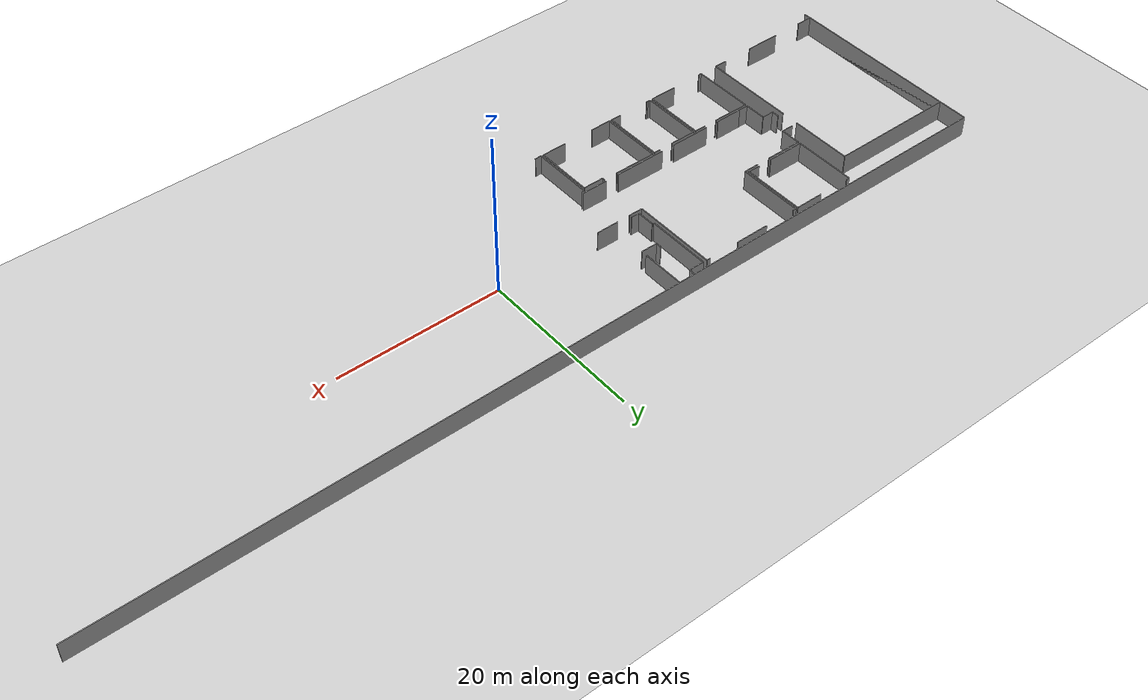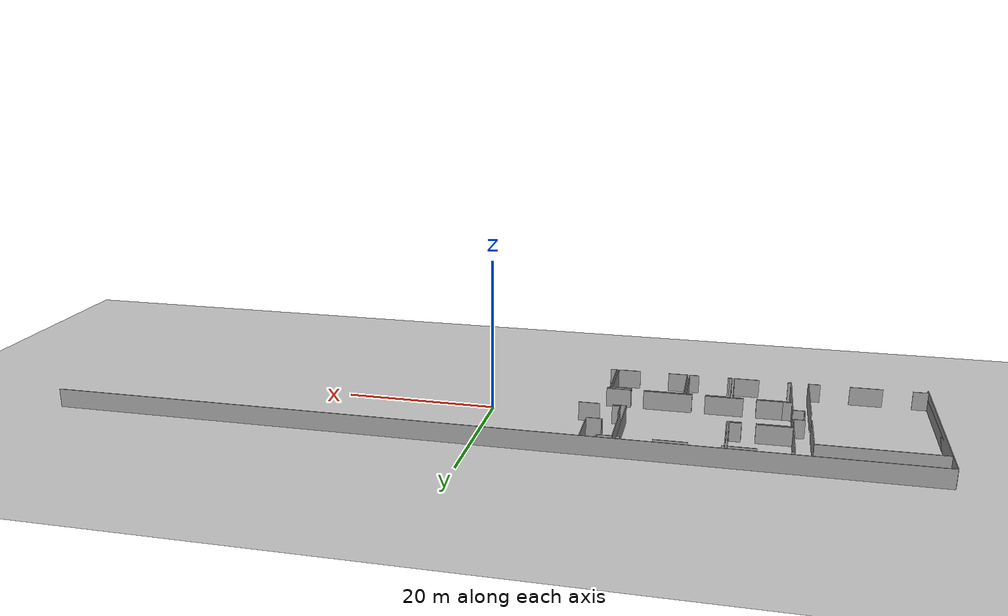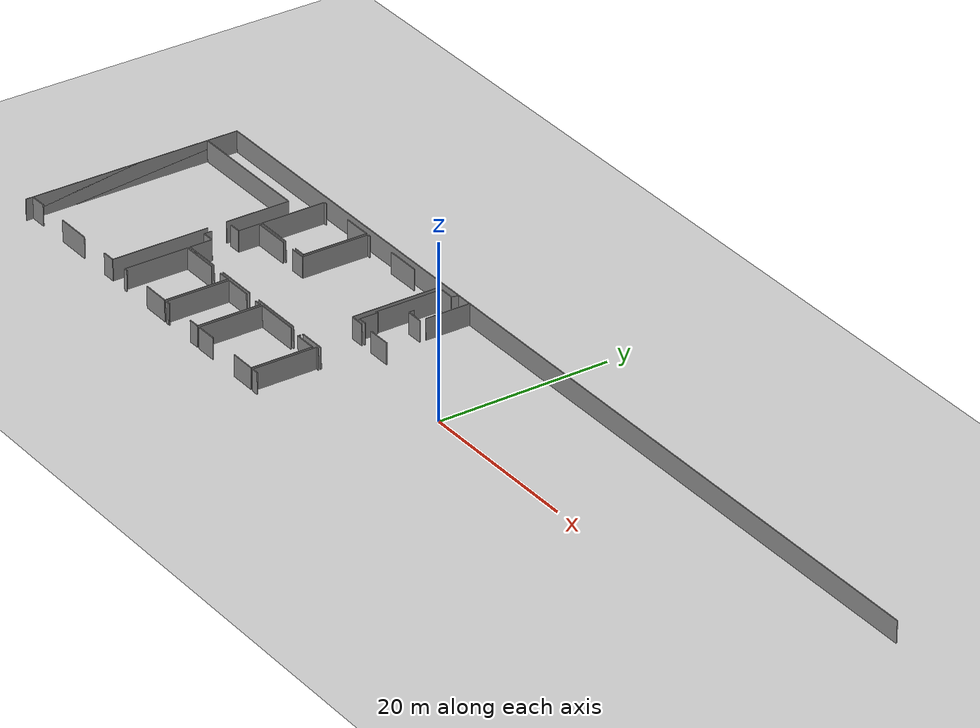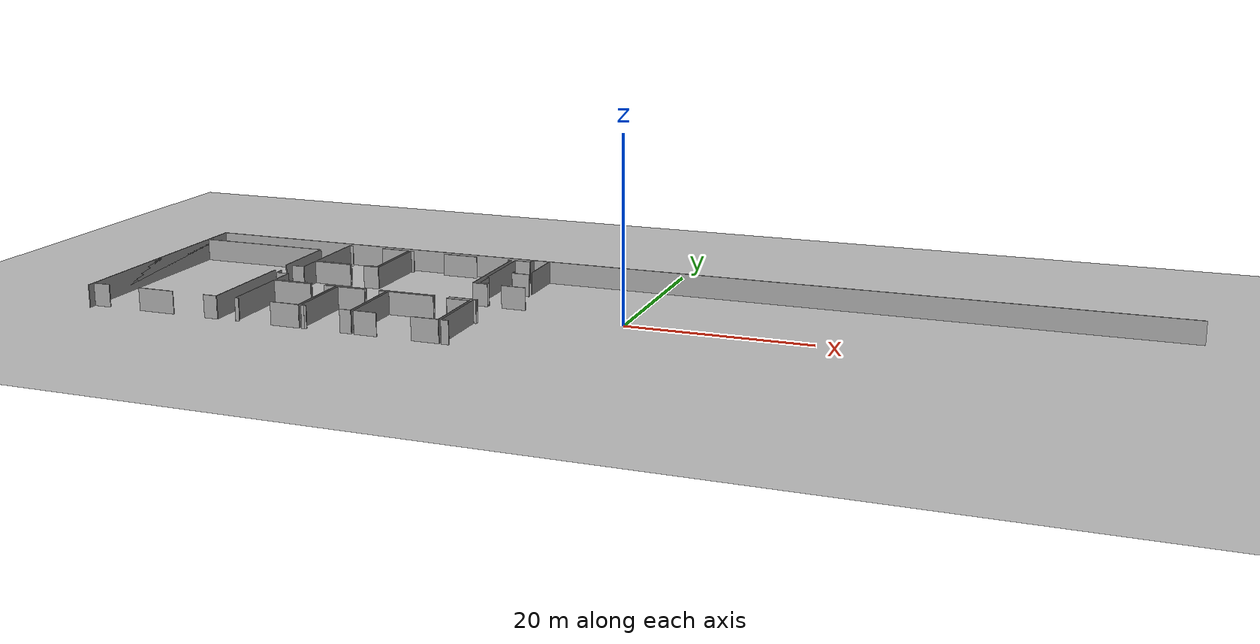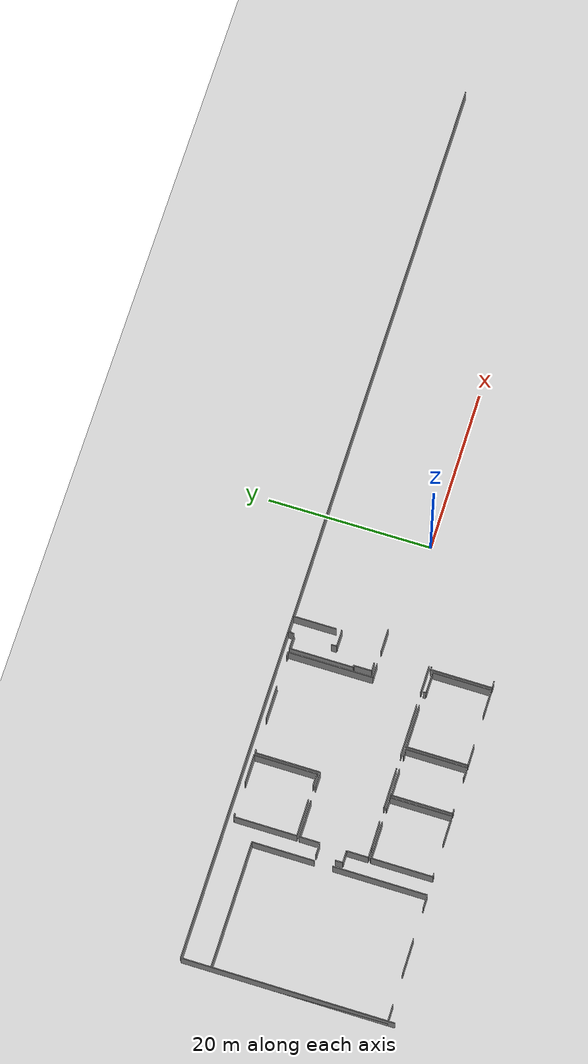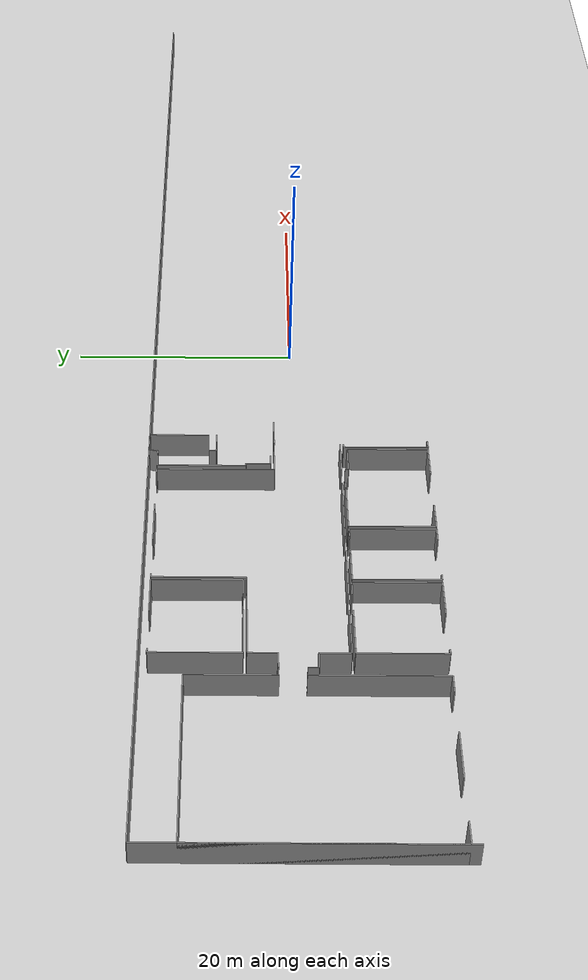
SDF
<sdf version="1.6">
 <world name="default">
  <model name="ground_plane">
   <static>1</static>
   <link name="link">
    <collision name="collision">
     <geometry><plane><normal>0 0 1</normal><size>100 100</size></plane></geometry>
     <surface><friction><ode><mu>100</mu><mu2>50</mu2></ode></friction></surface>
    </collision>
    <visual name="visual">
     <cast_shadows>0</cast_shadows>
     <geometry><plane><normal>0 0 1</normal><size>100 100</size></plane></geometry>
     <material>
      <script><uri>file://media/materials/scripts/gazebo.material</uri><name>Gazebo/Grey</name></script>
     </material>
    </visual>
   </link>
  </model>
  <model name="0510034690_Layout1">
   <static>1</static>
   <link name="Wall_0">
    <collision name="Wall_0_Collision">
     <geometry><box><size>21.0388316156 0.1 2.5</size></box></geometry>
     <pose>10.5194158078 0 1.25 0 0 0</pose>
    </collision>
    <visual name="Wall_0_Visual">
     <pose>10.5194158078 0 1.25 0 0 0</pose>
     <geometry><box><size>21.0388316156 0.1 2.5</size></box></geometry>
     <material>
      <script><uri>file://media/materials/scripts/gazebo.material</uri><name>Gazebo/Grey</name></script>
      <ambient>1 1 1 1</ambient>
     </material>
    </visual>
    <pose>0.0 -24.6704441286 0 0 0 1.57079632679</pose>
   </link>
   <link name="Wall_1">
    <collision name="Wall_1_Collision">
     <geometry><box><size>15.3425897633 0.1 2.5</size></box></geometry>
     <pose>7.67129488166 0 1.25 0 0 0</pose>
    </collision>
    <visual name="Wall_1_Visual">
     <pose>7.67129488166 0 1.25 0 0 0</pose>
     <geometry><box><size>15.3425897633 0.1 2.5</size></box></geometry>
     <material>
      <script><uri>file://media/materials/scripts/gazebo.material</uri><name>Gazebo/Grey</name></script>
      <ambient>1 1 1 1</ambient>
     </material>
    </visual>
    <pose>0.0 -3.63161251304 0 0 0 0.0</pose>
   </link>
   <link name="Wall_2">
    <collision name="Wall_2_Collision">
     <geometry><box><size>7.52580469702 0.1 2.5</size></box></geometry>
     <pose>3.76290234851 0 1.25 0 0 0</pose>
    </collision>
    <visual name="Wall_2_Visual">
     <pose>3.76290234851 0 1.25 0 0 0</pose>
     <geometry><box><size>7.52580469702 0.1 2.5</size></box></geometry>
     <material>
      <script><uri>file://media/materials/scripts/gazebo.material</uri><name>Gazebo/Grey</name></script>
      <ambient>1 1 1 1</ambient>
     </material>
    </visual>
    <pose>15.3425897633 -3.63161251304 0 0 0 -1.57079632679</pose>
   </link>
   <link name="Wall_3">
    <collision name="Wall_3_Collision">
     <geometry><box><size>11.2968849252 0.1 2.5</size></box></geometry>
     <pose>5.64844246259 0 1.25 0 0 0</pose>
    </collision>
    <visual name="Wall_3_Visual">
     <pose>5.64844246259 0 1.25 0 0 0</pose>
     <geometry><box><size>11.2968849252 0.1 2.5</size></box></geometry>
     <material>
      <script><uri>file://media/materials/scripts/gazebo.material</uri><name>Gazebo/Grey</name></script>
      <ambient>1 1 1 1</ambient>
     </material>
    </visual>
    <pose>15.3425897633 -13.3563159223 0 0 0 -1.57079632679</pose>
   </link>
   <link name="Wall_4">
    <collision name="Wall_4_Collision">
     <geometry><box><size>1.58092994537 0.1 2.5</size></box></geometry>
     <pose>0.790464972683 0 1.25 0 0 0</pose>
    </collision>
    <visual name="Wall_4_Visual">
     <pose>0.790464972683 0 1.25 0 0 0</pose>
     <geometry><box><size>1.58092994537 0.1 2.5</size></box></geometry>
     <material>
      <script><uri>file://media/materials/scripts/gazebo.material</uri><name>Gazebo/Grey</name></script>
      <ambient>1 1 1 1</ambient>
     </material>
    </visual>
    <pose>15.3425897633 -24.6532008475 0 0 0 3.14159265359</pose>
   </link>
   <link name="Wall_5">
    <collision name="Wall_5_Collision">
     <geometry><box><size>4.23829707384 0.1 2.5</size></box></geometry>
     <pose>2.11914853692 0 1.25 0 0 0</pose>
    </collision>
    <visual name="Wall_5_Visual">
     <pose>2.11914853692 0 1.25 0 0 0</pose>
     <geometry><box><size>4.23829707384 0.1 2.5</size></box></geometry>
     <material>
      <script><uri>file://media/materials/scripts/gazebo.material</uri><name>Gazebo/Grey</name></script>
      <ambient>1 1 1 1</ambient>
     </material>
    </visual>
    <pose>9.98271868221 -24.6532008475 0 0 0 3.14159265359</pose>
   </link>
   <link name="Wall_6">
    <collision name="Wall_6_Collision">
     <geometry><box><size>1.97899521187 0.1 2.5</size></box></geometry>
     <pose>0.989497605936 0 1.25 0 0 0</pose>
    </collision>
    <visual name="Wall_6_Visual">
     <pose>0.989497605936 0 1.25 0 0 0</pose>
     <geometry><box><size>1.97899521187 0.1 2.5</size></box></geometry>
     <material>
      <script><uri>file://media/materials/scripts/gazebo.material</uri><name>Gazebo/Grey</name></script>
      <ambient>1 1 1 1</ambient>
     </material>
    </visual>
    <pose>1.9789200888 -24.6532008475 0 0 0 -3.13287939384</pose>
   </link>
   <link name="Wall_7">
    <collision name="Wall_7_Collision">
     <geometry><box><size>7.58197214957 0.1 2.5</size></box></geometry>
     <pose>3.79098607478 0 1.25 0 0 0</pose>
    </collision>
    <visual name="Wall_7_Visual">
     <pose>3.79098607478 0 1.25 0 0 0</pose>
     <geometry><box><size>7.58197214957 0.1 2.5</size></box></geometry>
     <material>
      <script><uri>file://media/materials/scripts/gazebo.material</uri><name>Gazebo/Grey</name></script>
      <ambient>1 1 1 1</ambient>
     </material>
    </visual>
    <pose>17.571283851 -8.32913873614 0 0 0 1.57079632679</pose>
   </link>
   <link name="Wall_8">
    <collision name="Wall_8_Collision">
     <geometry><box><size>0.39367932315 0.1 2.5</size></box></geometry>
     <pose>0.196839661575 0 1.25 0 0 0</pose>
    </collision>
    <visual name="Wall_8_Visual">
     <pose>0.196839661575 0 1.25 0 0 0</pose>
     <geometry><box><size>0.39367932315 0.1 2.5</size></box></geometry>
     <material>
      <script><uri>file://media/materials/scripts/gazebo.material</uri><name>Gazebo/Grey</name></script>
      <ambient>1 1 1 1</ambient>
     </material>
    </visual>
    <pose>17.571283851 -0.747166586578 0 0 0 0.0</pose>
   </link>
   <link name="Wall_9">
    <collision name="Wall_9_Collision">
     <geometry><box><size>3.42646818298 0.1 2.5</size></box></geometry>
     <pose>1.71323409149 0 1.25 0 0 0</pose>
    </collision>
    <visual name="Wall_9_Visual">
     <pose>1.71323409149 0 1.25 0 0 0</pose>
     <geometry><box><size>3.42646818298 0.1 2.5</size></box></geometry>
     <material>
      <script><uri>file://media/materials/scripts/gazebo.material</uri><name>Gazebo/Grey</name></script>
      <ambient>1 1 1 1</ambient>
     </material>
    </visual>
    <pose>21.843433543 -0.747166586578 0 0 0 0.0</pose>
   </link>
   <link name="Wall_10">
    <collision name="Wall_10_Collision">
     <geometry><box><size>7.57677380746 0.1 2.5</size></box></geometry>
     <pose>3.78838690373 0 1.25 0 0 0</pose>
    </collision>
    <visual name="Wall_10_Visual">
     <pose>3.78838690373 0 1.25 0 0 0</pose>
     <geometry><box><size>7.57677380746 0.1 2.5</size></box></geometry>
     <material>
      <script><uri>file://media/materials/scripts/gazebo.material</uri><name>Gazebo/Grey</name></script>
      <ambient>1 1 1 1</ambient>
     </material>
    </visual>
    <pose>25.269901726 -0.747166586578 0 0 0 -1.57079632679</pose>
   </link>
   <link name="Wall_11">
    <collision name="Wall_11_Collision">
     <geometry><box><size>1.49243134068 0.1 2.5</size></box></geometry>
     <pose>0.746215670339 0 1.25 0 0 0</pose>
    </collision>
    <visual name="Wall_11_Visual">
     <pose>0.746215670339 0 1.25 0 0 0</pose>
     <geometry><box><size>1.49243134068 0.1 2.5</size></box></geometry>
     <material>
      <script><uri>file://media/materials/scripts/gazebo.material</uri><name>Gazebo/Grey</name></script>
      <ambient>1 1 1 1</ambient>
     </material>
    </visual>
    <pose>25.269901726 -8.32394039403 0 0 0 3.14159265359</pose>
   </link>
   <link name="Wall_12">
    <collision name="Wall_12_Collision">
     <geometry><box><size>4.47526841985 0.1 2.5</size></box></geometry>
     <pose>2.23763420992 0 1.25 0 0 0</pose>
    </collision>
    <visual name="Wall_12_Visual">
     <pose>2.23763420992 0 1.25 0 0 0</pose>
     <geometry><box><size>4.47526841985 0.1 2.5</size></box></geometry>
     <material>
      <script><uri>file://media/materials/scripts/gazebo.material</uri><name>Gazebo/Grey</name></script>
      <ambient>1 1 1 1</ambient>
     </material>
    </visual>
    <pose>22.0465492518 -8.32394039403 0 0 0 -3.14043108231</pose>
   </link>
   <link name="Wall_13">
    <collision name="Wall_13_Collision">
     <geometry><box><size>7.46164954806 0.1 2.5</size></box></geometry>
     <pose>3.73082477403 0 1.25 0 0 0</pose>
    </collision>
    <visual name="Wall_13_Visual">
     <pose>3.73082477403 0 1.25 0 0 0</pose>
     <geometry><box><size>7.46164954806 0.1 2.5</size></box></geometry>
     <material>
      <script><uri>file://media/materials/scripts/gazebo.material</uri><name>Gazebo/Grey</name></script>
      <ambient>1 1 1 1</ambient>
     </material>
    </visual>
    <pose>17.5726785282 -24.6704441286 0 0 0 1.57079632679</pose>
   </link>
   <link name="Wall_14">
    <collision name="Wall_14_Collision">
     <geometry><box><size>4.50696260871 0.1 2.5</size></box></geometry>
     <pose>2.25348130435 0 1.25 0 0 0</pose>
    </collision>
    <visual name="Wall_14_Visual">
     <pose>2.25348130435 0 1.25 0 0 0</pose>
     <geometry><box><size>4.50696260871 0.1 2.5</size></box></geometry>
     <material>
      <script><uri>file://media/materials/scripts/gazebo.material</uri><name>Gazebo/Grey</name></script>
      <ambient>1 1 1 1</ambient>
     </material>
    </visual>
    <pose>17.5726785282 -17.2087945805 0 0 0 0.0</pose>
   </link>
   <link name="Wall_15">
    <collision name="Wall_15_Collision">
     <geometry><box><size>1.36716397473 0.1 2.5</size></box></geometry>
     <pose>0.683581987364 0 1.25 0 0 0</pose>
    </collision>
    <visual name="Wall_15_Visual">
     <pose>0.683581987364 0 1.25 0 0 0</pose>
     <geometry><box><size>1.36716397473 0.1 2.5</size></box></geometry>
     <material>
      <script><uri>file://media/materials/scripts/gazebo.material</uri><name>Gazebo/Grey</name></script>
      <ambient>1 1 1 1</ambient>
     </material>
    </visual>
    <pose>23.7239654982 -17.2087945805 0 0 0 0.0</pose>
   </link>
   <link name="Wall_16">
    <collision name="Wall_16_Collision">
     <geometry><box><size>7.43223453905 0.1 2.5</size></box></geometry>
     <pose>3.71611726953 0 1.25 0 0 0</pose>
    </collision>
    <visual name="Wall_16_Visual">
     <pose>3.71611726953 0 1.25 0 0 0</pose>
     <geometry><box><size>7.43223453905 0.1 2.5</size></box></geometry>
     <material>
      <script><uri>file://media/materials/scripts/gazebo.material</uri><name>Gazebo/Grey</name></script>
      <ambient>1 1 1 1</ambient>
     </material>
    </visual>
    <pose>25.091129473 -17.2087945805 0 0 0 -1.57079632679</pose>
   </link>
   <link name="Wall_17">
    <collision name="Wall_17_Collision">
     <geometry><box><size>3.31793694284 0.1 2.5</size></box></geometry>
     <pose>1.65896847142 0 1.25 0 0 0</pose>
    </collision>
    <visual name="Wall_17_Visual">
     <pose>1.65896847142 0 1.25 0 0 0</pose>
     <geometry><box><size>3.31793694284 0.1 2.5</size></box></geometry>
     <material>
      <script><uri>file://media/materials/scripts/gazebo.material</uri><name>Gazebo/Grey</name></script>
      <ambient>1 1 1 1</ambient>
     </material>
    </visual>
    <pose>25.091129473 -24.6410291196 0 0 0 3.14159265359</pose>
   </link>
   <link name="Wall_18">
    <collision name="Wall_18_Collision">
     <geometry><box><size>0.433349389511 0.1 2.5</size></box></geometry>
     <pose>0.216674694756 0 1.25 0 0 0</pose>
    </collision>
    <visual name="Wall_18_Visual">
     <pose>0.216674694756 0 1.25 0 0 0</pose>
     <geometry><box><size>0.433349389511 0.1 2.5</size></box></geometry>
     <material>
      <script><uri>file://media/materials/scripts/gazebo.material</uri><name>Gazebo/Grey</name></script>
      <ambient>1 1 1 1</ambient>
     </material>
    </visual>
    <pose>18.0050284451 -24.6410291196 0 0 0 -3.07366214587</pose>
   </link>
   <link name="Wall_19">
    <collision name="Wall_19_Collision">
     <geometry><box><size>0.34511920052 0.1 2.5</size></box></geometry>
     <pose>0.17255960026 0 1.25 0 0 0</pose>
    </collision>
    <visual name="Wall_19_Visual">
     <pose>0.17255960026 0 1.25 0 0 0</pose>
     <geometry><box><size>0.34511920052 0.1 2.5</size></box></geometry>
     <material>
      <script><uri>file://media/materials/scripts/gazebo.material</uri><name>Gazebo/Grey</name></script>
      <ambient>1 1 1 1</ambient>
     </material>
    </visual>
    <pose>25.7380060935 -24.6487632383 0 0 0 3.14159265359</pose>
   </link>
   <link name="Wall_20">
    <collision name="Wall_20_Collision">
     <geometry><box><size>7.39166211283 0.1 2.5</size></box></geometry>
     <pose>3.69583105642 0 1.25 0 0 0</pose>
    </collision>
    <visual name="Wall_20_Visual">
     <pose>3.69583105642 0 1.25 0 0 0</pose>
     <geometry><box><size>7.39166211283 0.1 2.5</size></box></geometry>
     <material>
      <script><uri>file://media/materials/scripts/gazebo.material</uri><name>Gazebo/Grey</name></script>
      <ambient>1 1 1 1</ambient>
     </material>
    </visual>
    <pose>25.392886893 -24.6487632383 0 0 0 1.57079632679</pose>
   </link>
   <link name="Wall_21">
    <collision name="Wall_21_Collision">
     <geometry><box><size>3.22132385291 0.1 2.5</size></box></geometry>
     <pose>1.61066192645 0 1.25 0 0 0</pose>
    </collision>
    <visual name="Wall_21_Visual">
     <pose>1.61066192645 0 1.25 0 0 0</pose>
     <geometry><box><size>3.22132385291 0.1 2.5</size></box></geometry>
     <material>
      <script><uri>file://media/materials/scripts/gazebo.material</uri><name>Gazebo/Grey</name></script>
      <ambient>1 1 1 1</ambient>
     </material>
    </visual>
    <pose>25.392886893 -17.2571011255 0 0 0 0.0</pose>
   </link>
   <link name="Wall_22">
    <collision name="Wall_22_Collision">
     <geometry><box><size>0.834143725284 0.1 2.5</size></box></geometry>
     <pose>0.417071862642 0 1.25 0 0 0</pose>
    </collision>
    <visual name="Wall_22_Visual">
     <pose>0.417071862642 0 1.25 0 0 0</pose>
     <geometry><box><size>0.834143725284 0.1 2.5</size></box></geometry>
     <material>
      <script><uri>file://media/materials/scripts/gazebo.material</uri><name>Gazebo/Grey</name></script>
      <ambient>1 1 1 1</ambient>
     </material>
    </visual>
    <pose>30.29188057 -17.2571011255 0 0 0 0.0</pose>
   </link>
   <link name="Wall_23">
    <collision name="Wall_23_Collision">
     <geometry><box><size>7.38392799409 0.1 2.5</size></box></geometry>
     <pose>3.69196399704 0 1.25 0 0 0</pose>
    </collision>
    <visual name="Wall_23_Visual">
     <pose>3.69196399704 0 1.25 0 0 0</pose>
     <geometry><box><size>7.38392799409 0.1 2.5</size></box></geometry>
     <material>
      <script><uri>file://media/materials/scripts/gazebo.material</uri><name>Gazebo/Grey</name></script>
      <ambient>1 1 1 1</ambient>
     </material>
    </visual>
    <pose>31.1260242953 -17.2571011255 0 0 0 -1.57079632679</pose>
   </link>
   <link name="Wall_24">
    <collision name="Wall_24_Collision">
     <geometry><box><size>1.29578186235 0.1 2.5</size></box></geometry>
     <pose>0.647890931175 0 1.25 0 0 0</pose>
    </collision>
    <visual name="Wall_24_Visual">
     <pose>0.647890931175 0 1.25 0 0 0</pose>
     <geometry><box><size>1.29578186235 0.1 2.5</size></box></geometry>
     <material>
      <script><uri>file://media/materials/scripts/gazebo.material</uri><name>Gazebo/Grey</name></script>
      <ambient>1 1 1 1</ambient>
     </material>
    </visual>
    <pose>31.1260242953 -24.6410291196 0 0 0 3.14159265359</pose>
   </link>
   <link name="Wall_25">
    <collision name="Wall_25_Collision">
     <geometry><box><size>0.222648770081 0.1 2.5</size></box></geometry>
     <pose>0.111324385041 0 1.25 0 0 0</pose>
    </collision>
    <visual name="Wall_25_Visual">
     <pose>0.111324385041 0 1.25 0 0 0</pose>
     <geometry><box><size>0.222648770081 0.1 2.5</size></box></geometry>
     <material>
      <script><uri>file://media/materials/scripts/gazebo.material</uri><name>Gazebo/Grey</name></script>
      <ambient>1 1 1 1</ambient>
     </material>
    </visual>
    <pose>25.9605204935 -24.6410291196 0 0 0 -3.10684880576</pose>
   </link>
   <link name="Wall_26">
    <collision name="Wall_26_Collision">
     <geometry><box><size>7.4463080994 0.1 2.5</size></box></geometry>
     <pose>3.7231540497 0 1.25 0 0 0</pose>
    </collision>
    <visual name="Wall_26_Visual">
     <pose>3.7231540497 0 1.25 0 0 0</pose>
     <geometry><box><size>7.4463080994 0.1 2.5</size></box></geometry>
     <material>
      <script><uri>file://media/materials/scripts/gazebo.material</uri><name>Gazebo/Grey</name></script>
      <ambient>1 1 1 1</ambient>
     </material>
    </visual>
    <pose>31.4268941935 -24.6553562576 0 0 0 1.57079632679</pose>
   </link>
   <link name="Wall_27">
    <collision name="Wall_27_Collision">
     <geometry><box><size>5.20316008485 0.1 2.5</size></box></geometry>
     <pose>2.60158004242 0 1.25 0 0 0</pose>
    </collision>
    <visual name="Wall_27_Visual">
     <pose>2.60158004242 0 1.25 0 0 0</pose>
     <geometry><box><size>5.20316008485 0.1 2.5</size></box></geometry>
     <material>
      <script><uri>file://media/materials/scripts/gazebo.material</uri><name>Gazebo/Grey</name></script>
      <ambient>1 1 1 1</ambient>
     </material>
    </visual>
    <pose>31.4268941935 -17.2090481582 0 0 0 0.0</pose>
   </link>
   <link name="Wall_28">
    <collision name="Wall_28_Collision">
     <geometry><box><size>0.305941451453 0.1 2.5</size></box></geometry>
     <pose>0.152970725727 0 1.25 0 0 0</pose>
    </collision>
    <visual name="Wall_28_Visual">
     <pose>0.152970725727 0 1.25 0 0 0</pose>
     <geometry><box><size>0.305941451453 0.1 2.5</size></box></geometry>
     <material>
      <script><uri>file://media/materials/scripts/gazebo.material</uri><name>Gazebo/Grey</name></script>
      <ambient>1 1 1 1</ambient>
     </material>
    </visual>
    <pose>38.3278835267 -17.2090481582 0 0 0 -1.57079632679</pose>
   </link>
   <link name="Wall_29">
    <collision name="Wall_29_Collision">
     <geometry><box><size>2.54845552184 0.1 2.5</size></box></geometry>
     <pose>1.27422776092 0 1.25 0 0 0</pose>
    </collision>
    <visual name="Wall_29_Visual">
     <pose>1.27422776092 0 1.25 0 0 0</pose>
     <geometry><box><size>2.54845552184 0.1 2.5</size></box></geometry>
     <material>
      <script><uri>file://media/materials/scripts/gazebo.material</uri><name>Gazebo/Grey</name></script>
      <ambient>1 1 1 1</ambient>
     </material>
    </visual>
    <pose>38.3278835267 -17.5149896097 0 0 0 0.0</pose>
   </link>
   <link name="Wall_30">
    <collision name="Wall_30_Collision">
     <geometry><box><size>7.12375731096 0.1 2.5</size></box></geometry>
     <pose>3.56187865548 0 1.25 0 0 0</pose>
    </collision>
    <visual name="Wall_30_Visual">
     <pose>3.56187865548 0 1.25 0 0 0</pose>
     <geometry><box><size>7.12375731096 0.1 2.5</size></box></geometry>
     <material>
      <script><uri>file://media/materials/scripts/gazebo.material</uri><name>Gazebo/Grey</name></script>
      <ambient>1 1 1 1</ambient>
     </material>
    </visual>
    <pose>40.8763390486 -17.5149896097 0 0 0 -1.57079632679</pose>
   </link>
   <link name="Wall_31">
    <collision name="Wall_31_Collision">
     <geometry><box><size>3.03570500296 0.1 2.5</size></box></geometry>
     <pose>1.51785250148 0 1.25 0 0 0</pose>
    </collision>
    <visual name="Wall_31_Visual">
     <pose>1.51785250148 0 1.25 0 0 0</pose>
     <geometry><box><size>3.03570500296 0.1 2.5</size></box></geometry>
     <material>
      <script><uri>file://media/materials/scripts/gazebo.material</uri><name>Gazebo/Grey</name></script>
      <ambient>1 1 1 1</ambient>
     </material>
    </visual>
    <pose>40.8763390486 -24.6387469206 0 0 0 3.14159265359</pose>
   </link>
   <link name="Wall_32">
    <collision name="Wall_32_Collision">
     <geometry><box><size>2.5426774841 0.1 2.5</size></box></geometry>
     <pose>1.27133874205 0 1.25 0 0 0</pose>
    </collision>
    <visual name="Wall_32_Visual">
     <pose>1.27133874205 0 1.25 0 0 0</pose>
     <geometry><box><size>2.5426774841 0.1 2.5</size></box></geometry>
     <material>
      <script><uri>file://media/materials/scripts/gazebo.material</uri><name>Gazebo/Grey</name></script>
      <ambient>1 1 1 1</ambient>
     </material>
    </visual>
    <pose>33.969517429 -24.6387469206 0 0 0 -3.13506038388</pose>
   </link>
   <link name="Wall_33">
    <collision name="Wall_33_Collision">
     <geometry><box><size>7.46836935615 0.1 2.5</size></box></geometry>
     <pose>3.73418467808 0 1.25 0 0 0</pose>
    </collision>
    <visual name="Wall_33_Visual">
     <pose>3.73418467808 0 1.25 0 0 0</pose>
     <geometry><box><size>7.46836935615 0.1 2.5</size></box></geometry>
     <material>
      <script><uri>file://media/materials/scripts/gazebo.material</uri><name>Gazebo/Grey</name></script>
      <ambient>1 1 1 1</ambient>
     </material>
    </visual>
    <pose>41.1636425417 -24.667908352 0 0 0 1.57079632679</pose>
   </link>
   <link name="Wall_34">
    <collision name="Wall_34_Collision">
     <geometry><box><size>0.325974086899 0.1 2.5</size></box></geometry>
     <pose>0.162987043449 0 1.25 0 0 0</pose>
    </collision>
    <visual name="Wall_34_Visual">
     <pose>0.162987043449 0 1.25 0 0 0</pose>
     <geometry><box><size>0.325974086899 0.1 2.5</size></box></geometry>
     <material>
      <script><uri>file://media/materials/scripts/gazebo.material</uri><name>Gazebo/Grey</name></script>
      <ambient>1 1 1 1</ambient>
     </material>
    </visual>
    <pose>41.1636425417 -17.1995389958 0 0 0 0.0</pose>
   </link>
   <link name="Wall_38">
    <collision name="Wall_38_Collision">
     <geometry><box><size>0.816420343476 0.1 2.5</size></box></geometry>
     <pose>0.408210171738 0 1.25 0 0 0</pose>
    </collision>
    <visual name="Wall_38_Visual">
     <pose>0.408210171738 0 1.25 0 0 0</pose>
     <geometry><box><size>0.816420343476 0.1 2.5</size></box></geometry>
     <material>
      <script><uri>file://media/materials/scripts/gazebo.material</uri><name>Gazebo/Grey</name></script>
      <ambient>1 1 1 1</ambient>
     </material>
    </visual>
    <pose>41.9799090417 -24.652059748 0 0 0 -3.12217912516</pose>
   </link>
   <link name="Wall_47">
    <collision name="Wall_47_Collision">
     <geometry><box><size>2.171892691 0.1 2.5</size></box></geometry>
     <pose>1.0859463455 0 1.25 0 0 0</pose>
    </collision>
    <visual name="Wall_47_Visual">
     <pose>1.0859463455 0 1.25 0 0 0</pose>
     <geometry><box><size>2.171892691 0.1 2.5</size></box></geometry>
     <material>
      <script><uri>file://media/materials/scripts/gazebo.material</uri><name>Gazebo/Grey</name></script>
      <ambient>1 1 1 1</ambient>
     </material>
    </visual>
    <pose>38.9810995888 -10.7163188638 0 0 0 1.57079632679</pose>
   </link>
   <link name="Wall_48">
    <collision name="Wall_48_Collision">
     <geometry><box><size>0.231516407109 0.1 2.5</size></box></geometry>
     <pose>0.115758203554 0 1.25 0 0 0</pose>
    </collision>
    <visual name="Wall_48_Visual">
     <pose>0.115758203554 0 1.25 0 0 0</pose>
     <geometry><box><size>0.231516407109 0.1 2.5</size></box></geometry>
     <material>
      <script><uri>file://media/materials/scripts/gazebo.material</uri><name>Gazebo/Grey</name></script>
      <ambient>1 1 1 1</ambient>
     </material>
    </visual>
    <pose>38.9810995888 -8.54442617276 0 0 0 3.14159265359</pose>
   </link>
   <link name="Wall_49">
    <collision name="Wall_49_Collision">
     <geometry><box><size>7.77278934162 0.1 2.5</size></box></geometry>
     <pose>3.88639467081 0 1.25 0 0 0</pose>
    </collision>
    <visual name="Wall_49_Visual">
     <pose>3.88639467081 0 1.25 0 0 0</pose>
     <geometry><box><size>7.77278934162 0.1 2.5</size></box></geometry>
     <material>
      <script><uri>file://media/materials/scripts/gazebo.material</uri><name>Gazebo/Grey</name></script>
      <ambient>1 1 1 1</ambient>
     </material>
    </visual>
    <pose>38.7495831817 -8.54442617276 0 0 0 1.57079632679</pose>
   </link>
   <link name="Wall_50">
    <collision name="Wall_50_Collision">
     <geometry><box><size>1.80813553219 0.1 2.5</size></box></geometry>
     <pose>0.904067766095 0 1.25 0 0 0</pose>
    </collision>
    <visual name="Wall_50_Visual">
     <pose>0.904067766095 0 1.25 0 0 0</pose>
     <geometry><box><size>1.80813553219 0.1 2.5</size></box></geometry>
     <material>
      <script><uri>file://media/materials/scripts/gazebo.material</uri><name>Gazebo/Grey</name></script>
      <ambient>1 1 1 1</ambient>
     </material>
    </visual>
    <pose>38.7495831817 -0.771636831141 0 0 0 0.0</pose>
   </link>
   <link name="Wall_51">
    <collision name="Wall_51_Collision">
     <geometry><box><size>0.789150353214 0.1 2.5</size></box></geometry>
     <pose>0.394575176607 0 1.25 0 0 0</pose>
    </collision>
    <visual name="Wall_51_Visual">
     <pose>0.394575176607 0 1.25 0 0 0</pose>
     <geometry><box><size>0.789150353214 0.1 2.5</size></box></geometry>
     <material>
      <script><uri>file://media/materials/scripts/gazebo.material</uri><name>Gazebo/Grey</name></script>
      <ambient>1 1 1 1</ambient>
     </material>
    </visual>
    <pose>40.5577187139 -0.771636831141 0 0 0 1.35972543623</pose>
   </link>
   <link name="Wall_52">
    <collision name="Wall_52_Collision">
     <geometry><box><size>1.89993525354 0.1 2.5</size></box></geometry>
     <pose>0.949967626772 0 1.25 0 0 0</pose>
    </collision>
    <visual name="Wall_52_Visual">
     <pose>0.949967626772 0 1.25 0 0 0</pose>
     <geometry><box><size>1.89993525354 0.1 2.5</size></box></geometry>
     <material>
      <script><uri>file://media/materials/scripts/gazebo.material</uri><name>Gazebo/Grey</name></script>
      <ambient>1 1 1 1</ambient>
     </material>
    </visual>
    <pose>40.7230513507 -0.0 0 0 0 -0.00220219864221</pose>
   </link>
   <link name="Wall_53">
    <collision name="Wall_53_Collision">
     <geometry><box><size>5.2768243962 0.1 2.5</size></box></geometry>
     <pose>2.6384121981 0 1.25 0 0 0</pose>
    </collision>
    <visual name="Wall_53_Visual">
     <pose>2.6384121981 0 1.25 0 0 0</pose>
     <geometry><box><size>5.2768243962 0.1 2.5</size></box></geometry>
     <material>
      <script><uri>file://media/materials/scripts/gazebo.material</uri><name>Gazebo/Grey</name></script>
      <ambient>1 1 1 1</ambient>
     </material>
    </visual>
    <pose>42.6229819973 -0.00418403145377 0 0 0 -1.57079632679</pose>
   </link>
   <link name="Wall_55">
    <collision name="Wall_55_Collision">
     <geometry><box><size>0.661457336192 0.1 2.5</size></box></geometry>
     <pose>0.330728668096 0 1.25 0 0 0</pose>
    </collision>
    <visual name="Wall_55_Visual">
     <pose>0.330728668096 0 1.25 0 0 0</pose>
     <geometry><box><size>0.661457336192 0.1 2.5</size></box></geometry>
     <material>
      <script><uri>file://media/materials/scripts/gazebo.material</uri><name>Gazebo/Grey</name></script>
      <ambient>1 1 1 1</ambient>
     </material>
    </visual>
    <pose>40.6239024842 -5.28100842765 0 0 0 -1.57079632679</pose>
   </link>
   <link name="Wall_56">
    <collision name="Wall_56_Collision">
     <geometry><box><size>2.01759068254 0.1 2.5</size></box></geometry>
     <pose>1.00879534127 0 1.25 0 0 0</pose>
    </collision>
    <visual name="Wall_56_Visual">
     <pose>1.00879534127 0 1.25 0 0 0</pose>
     <geometry><box><size>2.01759068254 0.1 2.5</size></box></geometry>
     <material>
      <script><uri>file://media/materials/scripts/gazebo.material</uri><name>Gazebo/Grey</name></script>
      <ambient>1 1 1 1</ambient>
     </material>
    </visual>
    <pose>40.6239024842 -5.94246576385 0 0 0 0.0</pose>
   </link>
   <link name="Wall_59">
    <collision name="Wall_59_Collision">
     <geometry><box><size>1.02462827794 0.1 2.5</size></box></geometry>
     <pose>0.51231413897 0 1.25 0 0 0</pose>
    </collision>
    <visual name="Wall_59_Visual">
     <pose>0.51231413897 0 1.25 0 0 0</pose>
     <geometry><box><size>1.02462827794 0.1 2.5</size></box></geometry>
     <material>
      <script><uri>file://media/materials/scripts/gazebo.material</uri><name>Gazebo/Grey</name></script>
      <ambient>1 1 1 1</ambient>
     </material>
    </visual>
    <pose>40.0056801397 -10.7064293349 0 0 0 -3.13194068257</pose>
   </link>
   <link name="Wall_60">
    <collision name="Wall_60_Collision">
     <geometry><box><size>1.18103796945 0.1 2.5</size></box></geometry>
     <pose>0.590518984726 0 1.25 0 0 0</pose>
    </collision>
    <visual name="Wall_60_Visual">
     <pose>0.590518984726 0 1.25 0 0 0</pose>
     <geometry><box><size>1.18103796945 0.1 2.5</size></box></geometry>
     <material>
      <script><uri>file://media/materials/scripts/gazebo.material</uri><name>Gazebo/Grey</name></script>
      <ambient>1 1 1 1</ambient>
     </material>
    </visual>
    <pose>18.7377411048 -16.9317609828 0 0 0 3.14159265359</pose>
   </link>
   <link name="Wall_61">
    <collision name="Wall_61_Collision">
     <geometry><box><size>2.63036110727 0.1 2.5</size></box></geometry>
     <pose>1.31518055364 0 1.25 0 0 0</pose>
    </collision>
    <visual name="Wall_61_Visual">
     <pose>1.31518055364 0 1.25 0 0 0</pose>
     <geometry><box><size>2.63036110727 0.1 2.5</size></box></geometry>
     <material>
      <script><uri>file://media/materials/scripts/gazebo.material</uri><name>Gazebo/Grey</name></script>
      <ambient>1 1 1 1</ambient>
     </material>
    </visual>
    <pose>17.5567031354 -16.9317609828 0 0 0 1.57079632679</pose>
   </link>
   <link name="Wall_62">
    <collision name="Wall_62_Collision">
     <geometry><box><size>1.45236606979 0.1 2.5</size></box></geometry>
     <pose>0.726183034894 0 1.25 0 0 0</pose>
    </collision>
    <visual name="Wall_62_Visual">
     <pose>0.726183034894 0 1.25 0 0 0</pose>
     <geometry><box><size>1.45236606979 0.1 2.5</size></box></geometry>
     <material>
      <script><uri>file://media/materials/scripts/gazebo.material</uri><name>Gazebo/Grey</name></script>
      <ambient>1 1 1 1</ambient>
     </material>
    </visual>
    <pose>17.5567031354 -14.3013998755 0 0 0 3.14159265359</pose>
   </link>
   <link name="Wall_63">
    <collision name="Wall_63_Collision">
     <geometry><box><size>0.917063621368 0.1 2.5</size></box></geometry>
     <pose>0.458531810684 0 1.25 0 0 0</pose>
    </collision>
    <visual name="Wall_63_Visual">
     <pose>0.458531810684 0 1.25 0 0 0</pose>
     <geometry><box><size>0.917063621368 0.1 2.5</size></box></geometry>
     <material>
      <script><uri>file://media/materials/scripts/gazebo.material</uri><name>Gazebo/Grey</name></script>
      <ambient>1 1 1 1</ambient>
     </material>
    </visual>
    <pose>16.1043370656 -14.3013998755 0 0 0 1.57079632679</pose>
   </link>
   <link name="Wall_64">
    <collision name="Wall_64_Collision">
     <geometry><box><size>1.45553579059 0.1 2.5</size></box></geometry>
     <pose>0.727767895293 0 1.25 0 0 0</pose>
    </collision>
    <visual name="Wall_64_Visual">
     <pose>0.727767895293 0 1.25 0 0 0</pose>
     <geometry><box><size>1.45553579059 0.1 2.5</size></box></geometry>
     <material>
      <script><uri>file://media/materials/scripts/gazebo.material</uri><name>Gazebo/Grey</name></script>
      <ambient>1 1 1 1</ambient>
     </material>
    </visual>
    <pose>16.1043370656 -11.0994747139 0 0 0 0.0</pose>
   </link>
   <link name="Wall_65">
    <collision name="Wall_65_Collision">
     <geometry><box><size>2.47238222268 0.1 2.5</size></box></geometry>
     <pose>1.23619111134 0 1.25 0 0 0</pose>
    </collision>
    <visual name="Wall_65_Visual">
     <pose>1.23619111134 0 1.25 0 0 0</pose>
     <geometry><box><size>2.47238222268 0.1 2.5</size></box></geometry>
     <material>
      <script><uri>file://media/materials/scripts/gazebo.material</uri><name>Gazebo/Grey</name></script>
      <ambient>1 1 1 1</ambient>
     </material>
    </visual>
    <pose>17.5598728562 -11.0994747139 0 0 0 1.57079632679</pose>
   </link>
   <link name="Wall_66">
    <collision name="Wall_66_Collision">
     <geometry><box><size>4.49669271332 0.1 2.5</size></box></geometry>
     <pose>2.24834635666 0 1.25 0 0 0</pose>
    </collision>
    <visual name="Wall_66_Visual">
     <pose>2.24834635666 0 1.25 0 0 0</pose>
     <geometry><box><size>4.49669271332 0.1 2.5</size></box></geometry>
     <material>
      <script><uri>file://media/materials/scripts/gazebo.material</uri><name>Gazebo/Grey</name></script>
      <ambient>1 1 1 1</ambient>
     </material>
    </visual>
    <pose>17.5598728562 -8.62709249119 0 0 0 0.0</pose>
   </link>
   <link name="Wall_67">
    <collision name="Wall_67_Collision">
     <geometry><box><size>1.82677349048 0.1 2.5</size></box></geometry>
     <pose>0.913386745242 0 1.25 0 0 0</pose>
    </collision>
    <visual name="Wall_67_Visual">
     <pose>0.913386745242 0 1.25 0 0 0</pose>
     <geometry><box><size>1.82677349048 0.1 2.5</size></box></geometry>
     <material>
      <script><uri>file://media/materials/scripts/gazebo.material</uri><name>Gazebo/Grey</name></script>
      <ambient>1 1 1 1</ambient>
     </material>
    </visual>
    <pose>23.7409552017 -8.62709249119 0 0 0 0.0</pose>
   </link>
   <link name="Wall_68">
    <collision name="Wall_68_Collision">
     <geometry><box><size>7.87257215235 0.1 2.5</size></box></geometry>
     <pose>3.93628607618 0 1.25 0 0 0</pose>
    </collision>
    <visual name="Wall_68_Visual">
     <pose>3.93628607618 0 1.25 0 0 0</pose>
     <geometry><box><size>7.87257215235 0.1 2.5</size></box></geometry>
     <material>
      <script><uri>file://media/materials/scripts/gazebo.material</uri><name>Gazebo/Grey</name></script>
      <ambient>1 1 1 1</ambient>
     </material>
    </visual>
    <pose>25.5677286922 -8.62709249119 0 0 0 1.57079632679</pose>
   </link>
   <link name="Wall_69">
    <collision name="Wall_69_Collision">
     <geometry><box><size>0.382014750613 0.1 2.5</size></box></geometry>
     <pose>0.191007375306 0 1.25 0 0 0</pose>
    </collision>
    <visual name="Wall_69_Visual">
     <pose>0.191007375306 0 1.25 0 0 0</pose>
     <geometry><box><size>0.382014750613 0.1 2.5</size></box></geometry>
     <material>
      <script><uri>file://media/materials/scripts/gazebo.material</uri><name>Gazebo/Grey</name></script>
      <ambient>1 1 1 1</ambient>
     </material>
    </visual>
    <pose>25.5677286922 -0.75452033883 0 0 0 0.0</pose>
   </link>
   <link name="Wall_70">
    <collision name="Wall_70_Collision">
     <geometry><box><size>4.15271461229 0.1 2.5</size></box></geometry>
     <pose>2.07635730614 0 1.25 0 0 0</pose>
    </collision>
    <visual name="Wall_70_Visual">
     <pose>2.07635730614 0 1.25 0 0 0</pose>
     <geometry><box><size>4.15271461229 0.1 2.5</size></box></geometry>
     <material>
      <script><uri>file://media/materials/scripts/gazebo.material</uri><name>Gazebo/Grey</name></script>
      <ambient>1 1 1 1</ambient>
     </material>
    </visual>
    <pose>29.8095758533 -0.75452033883 0 0 0 0.0</pose>
   </link>
   <link name="Wall_71">
    <collision name="Wall_71_Collision">
     <geometry><box><size>0.449466409201 0.1 2.5</size></box></geometry>
     <pose>0.2247332046 0 1.25 0 0 0</pose>
    </collision>
    <visual name="Wall_71_Visual">
     <pose>0.2247332046 0 1.25 0 0 0</pose>
     <geometry><box><size>0.449466409201 0.1 2.5</size></box></geometry>
     <material>
      <script><uri>file://media/materials/scripts/gazebo.material</uri><name>Gazebo/Grey</name></script>
      <ambient>1 1 1 1</ambient>
     </material>
    </visual>
    <pose>37.8115994031 -0.75452033883 0 0 0 0.0</pose>
   </link>
   <link name="Wall_72">
    <collision name="Wall_72_Collision">
     <geometry><box><size>10.3036212158 0.1 2.5</size></box></geometry>
     <pose>5.15181060791 0 1.25 0 0 0</pose>
    </collision>
    <visual name="Wall_72_Visual">
     <pose>5.15181060791 0 1.25 0 0 0</pose>
     <geometry><box><size>10.3036212158 0.1 2.5</size></box></geometry>
     <material>
      <script><uri>file://media/materials/scripts/gazebo.material</uri><name>Gazebo/Grey</name></script>
      <ambient>1 1 1 1</ambient>
     </material>
    </visual>
    <pose>38.2610658123 -0.75452033883 0 0 0 -1.57079632679</pose>
   </link>
   <link name="Wall_73">
    <collision name="Wall_73_Collision">
     <geometry><box><size>1.72331380363 0.1 2.5</size></box></geometry>
     <pose>0.861656901813 0 1.25 0 0 0</pose>
    </collision>
    <visual name="Wall_73_Visual">
     <pose>0.861656901813 0 1.25 0 0 0</pose>
     <geometry><box><size>1.72331380363 0.1 2.5</size></box></geometry>
     <material>
      <script><uri>file://media/materials/scripts/gazebo.material</uri><name>Gazebo/Grey</name></script>
      <ambient>1 1 1 1</ambient>
     </material>
    </visual>
    <pose>38.2610658123 -11.0581415547 0 0 0 0.0</pose>
   </link>
   <link name="Wall_74">
    <collision name="Wall_74_Collision">
     <geometry><box><size>2.7487818763 0.1 2.5</size></box></geometry>
     <pose>1.37439093815 0 1.25 0 0 0</pose>
    </collision>
    <visual name="Wall_74_Visual">
     <pose>1.37439093815 0 1.25 0 0 0</pose>
     <geometry><box><size>2.7487818763 0.1 2.5</size></box></geometry>
     <material>
      <script><uri>file://media/materials/scripts/gazebo.material</uri><name>Gazebo/Grey</name></script>
      <ambient>1 1 1 1</ambient>
     </material>
    </visual>
    <pose>41.6142500504 -11.0581415547 0 0 0 0.0</pose>
   </link>
   <link name="Wall_83">
    <collision name="Wall_83_Collision">
     <geometry><box><size>3.22309889656 0.1 2.5</size></box></geometry>
     <pose>1.61154944828 0 1.25 0 0 0</pose>
    </collision>
    <visual name="Wall_83_Visual">
     <pose>1.61154944828 0 1.25 0 0 0</pose>
     <geometry><box><size>3.22309889656 0.1 2.5</size></box></geometry>
     <material>
      <script><uri>file://media/materials/scripts/gazebo.material</uri><name>Gazebo/Grey</name></script>
      <ambient>1 1 1 1</ambient>
     </material>
    </visual>
    <pose>41.5284140112 -16.9046281727 0 0 0 3.14159265359</pose>
   </link>
   <link name="Wall_84">
    <collision name="Wall_84_Collision">
     <geometry><box><size>6.33094674489 0.1 2.5</size></box></geometry>
     <pose>3.16547337244 0 1.25 0 0 0</pose>
    </collision>
    <visual name="Wall_84_Visual">
     <pose>3.16547337244 0 1.25 0 0 0</pose>
     <geometry><box><size>6.33094674489 0.1 2.5</size></box></geometry>
     <material>
      <script><uri>file://media/materials/scripts/gazebo.material</uri><name>Gazebo/Grey</name></script>
      <ambient>1 1 1 1</ambient>
     </material>
    </visual>
    <pose>36.6289131788 -16.9046281727 0 0 0 3.14159265359</pose>
   </link>
   <link name="Wall_85">
    <collision name="Wall_85_Collision">
     <geometry><box><size>4.8841593837 0.1 2.5</size></box></geometry>
     <pose>2.44207969185 0 1.25 0 0 0</pose>
    </collision>
    <visual name="Wall_85_Visual">
     <pose>2.44207969185 0 1.25 0 0 0</pose>
     <geometry><box><size>4.8841593837 0.1 2.5</size></box></geometry>
     <material>
      <script><uri>file://media/materials/scripts/gazebo.material</uri><name>Gazebo/Grey</name></script>
      <ambient>1 1 1 1</ambient>
     </material>
    </visual>
    <pose>28.6175072555 -16.9046281727 0 0 0 3.14159265359</pose>
   </link>
   <link name="Wall_86">
    <collision name="Wall_86_Collision">
     <geometry><box><size>3.31893537398 0.1 2.5</size></box></geometry>
     <pose>1.65946768699 0 1.25 0 0 0</pose>
    </collision>
    <visual name="Wall_86_Visual">
     <pose>1.65946768699 0 1.25 0 0 0</pose>
     <geometry><box><size>3.31893537398 0.1 2.5</size></box></geometry>
     <material>
      <script><uri>file://media/materials/scripts/gazebo.material</uri><name>Gazebo/Grey</name></script>
      <ambient>1 1 1 1</ambient>
     </material>
    </visual>
    <pose>22.0565655695 -16.9046281727 0 0 0 -3.13341740785</pose>
   </link>
   <link name="Wall_332">
    <collision name="Wall_332_Collision">
     <geometry><box><size>25.5307063533 0.1 2.5</size></box></geometry>
     <pose>12.7653531766 0 1.25 0 0 0</pose>
    </collision>
    <visual name="Wall_332_Visual">
     <pose>12.7653531766 0 1.25 0 0 0</pose>
     <geometry><box><size>25.5307063533 0.1 2.5</size></box></geometry>
     <material>
      <script><uri>file://media/materials/scripts/gazebo.material</uri><name>Gazebo/Grey</name></script>
      <ambient>1 1 1 1</ambient>
     </material>
    </visual>
    <pose>0.0 -25.5307063533 0 0 0 1.57079632679</pose>
   </link>
   <link name="Wall_333">
    <collision name="Wall_333_Collision">
     <geometry><box><size>112.297755964 0.1 2.5</size></box></geometry>
     <pose>56.1488779822 0 1.25 0 0 0</pose>
    </collision>
    <visual name="Wall_333_Visual">
     <pose>56.1488779822 0 1.25 0 0 0</pose>
     <geometry><box><size>112.297755964 0.1 2.5</size></box></geometry>
     <material>
      <script><uri>file://media/materials/scripts/gazebo.material</uri><name>Gazebo/Grey</name></script>
      <ambient>1 1 1 1</ambient>
     </material>
    </visual>
   </link>
   <pose>-56.1 12.7807063533 0 0 0 0</pose>
  </model>
 </world>
</sdf>
